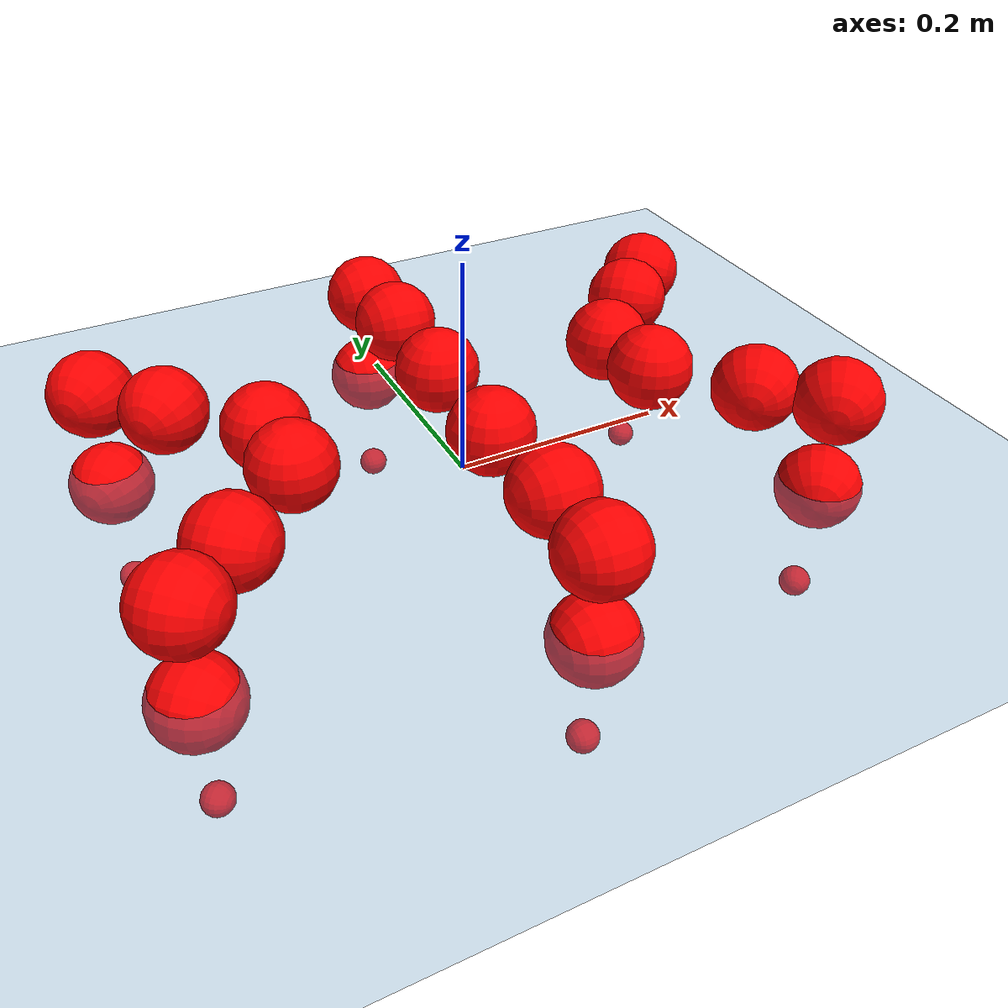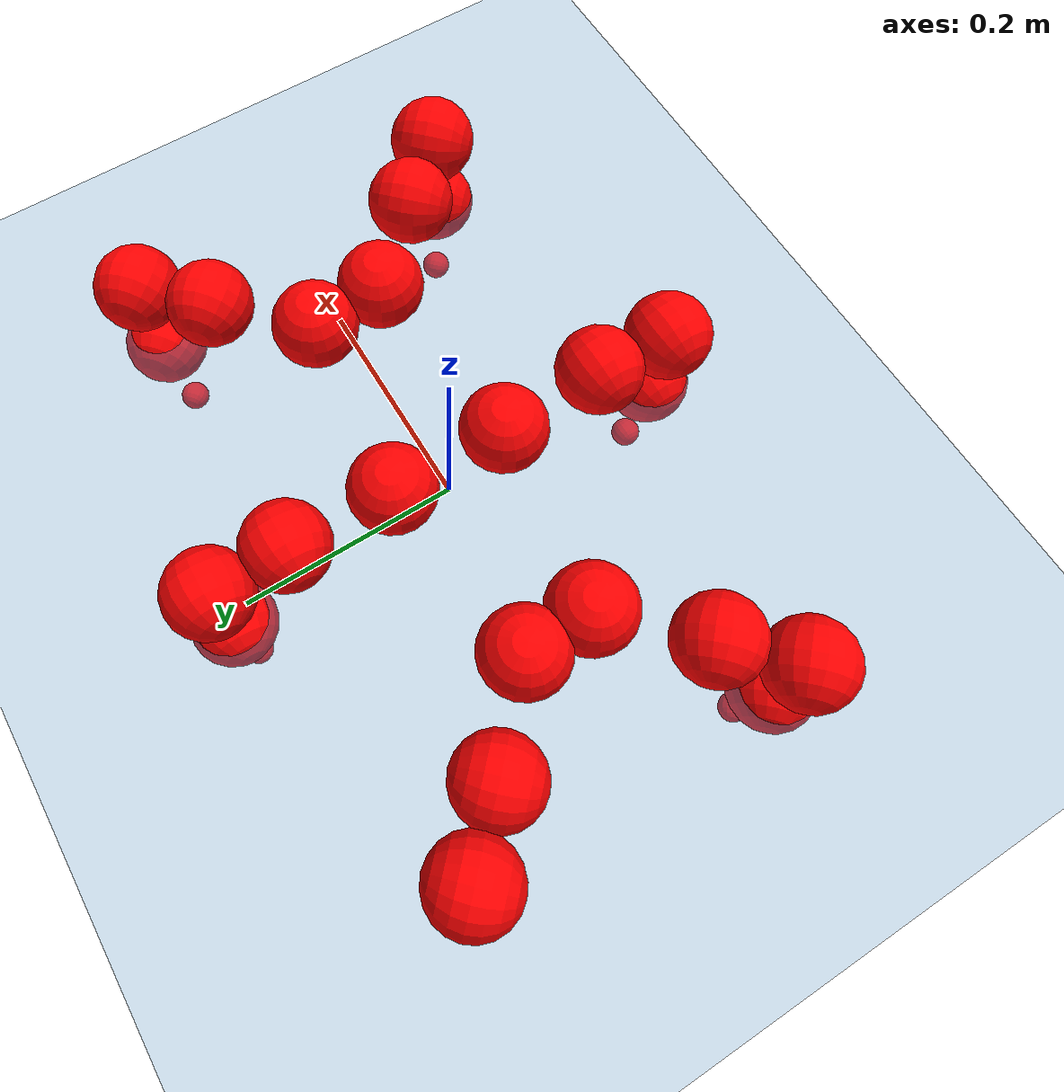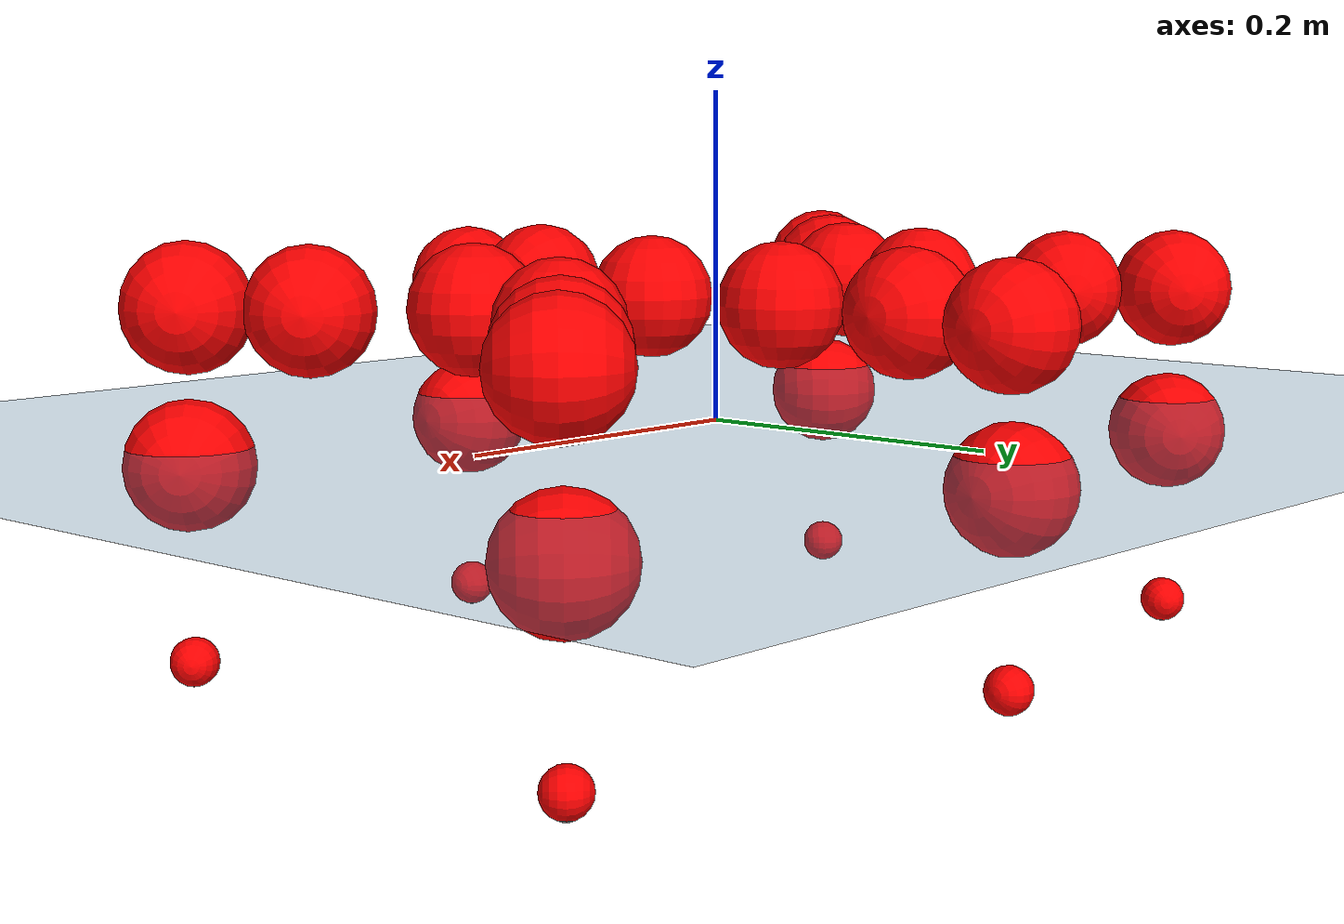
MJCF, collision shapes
<mujoco model="Golem">
  <compiler angle="radian" assetdir="assets" balanceinertia="true" inertiafromgeom="false"/>

  <option timestep="0.005" density="1.2" viscosity="2e-05"/>

  <size nkey="1"/>

  <visual>
    <quality shadowsize="8192"/>
    <map shadowclip="0.5"/>
  </visual>

  <default>
    <default class="/">
      <joint armature="0.01" damping="0.01" frictionloss="0.01"/>
      <geom contype="0" conaffinity="0" group="1" solref="-1000 -80"/>
      <site size="0.01 0.005 0.005" group="5"/>
      <general forcelimited="true" biastype="affine" gainprm="25" biasprm="0 -25 -0.5"/>
      <default class="visual">
        <geom type="mesh" group="2"/>
      </default>
      <default class="collision">
        <geom group="3"/>
      </default>
      <default class="foot">
        <geom size="0.01 0 0" condim="6" group="4" priority="1" solimp="0.015 1 0.01"/>
      </default>
      <default class="reward_collision_sphere">
        <geom group="5" rgba="1 0 0 1"/>
      </default>
    </default>
  </default>

  <asset>
    <texture type="skybox" colorspace="auto" name="//unnamed_texture_0" builtin="gradient" rgb1="0.95 0.95 0.95" rgb2="0.95 0.95 0.95" width="100" height="600"/>
    <texture type="2d" colorspace="auto" name="texplane" builtin="checker" rgb1="0.345 0.575 0.748" rgb2="0.345 0.575 0.748" markrgb="1 1 1" width="512" height="512"/>
    <material name="MatPlane" class="/" texture="texplane" texuniform="true" texrepeat="2 2" specular="0.9"/>
    <mesh name="body" class="/" file="body.stl" scale="0.001 0.001 0.001"/>
    <mesh name="coxa" class="/" file="coxa.stl" scale="0.001 0.001 0.001"/>
    <mesh name="femur" class="/" file="femur.stl" scale="0.001 0.001 0.001"/>
    <mesh name="tibia" class="/" file="tibia.stl" scale="0.001 0.001 0.001"/>
    <mesh name="tarsus" class="/" file="tarsus.stl" scale="0.001 0.001 0.001"/>
  </asset>

  <worldbody>
    <geom name="floor" class="/" size="100 100 0.125" type="plane" group="0" material="MatPlane"/>
    <light name="toplight_shadow" class="/" pos="0 0 5" dir="0.0990148 0.0990148 -0.990148" type="directional" ambient="0.04 0.04 0.04" diffuse="0.55 0.55 0.55" specular="0.12 0.12 0.12"/>
    <light name="toplight_fill" class="/" pos="0 0 5" dir="0.0990148 0.0990148 -0.990148" type="directional" castshadow="false" ambient="0.04 0.04 0.04" diffuse="0.3 0.3 0.3" specular="0.08 0.08 0.08"/>
    <body name="trunk" pos="0.00188261 8.70673e-05 0.000946356" quat="0.999999 0.000535888 -0.000370012 0.00106592">
      <inertial pos="0.000675382 0.00039805 -0.0010658" quat="0.999912 -0.00519141 -0.0118052 -0.00324104" mass="3.21169" diaginertia="0.0134054 0.00111527 0.0204335"/>
      <joint name="//unnamed_joint_0" type="free"/>
      <geom name="//unnamed_geom_1" class="/" pos="0 0 0.0734177" quat="1 0 0 0" type="mesh" rgba="0.9 0.9 0.9 1" mesh="body"/>
      <site name="imu" class="/" pos="0.125186 -0.000739988 0.115118" size="0.0095264"/>
      <camera name="track" class="/" pos="0 -1.29754 0" quat="0.707107 0.707107 0 0" mode="trackcom"/>
      <camera name="ego_camera" class="/" pos="0.13806 0 0.114715" quat="-0.5 -0.5 0.5 0.5"/>
      <body name="coxa_RR" pos="-0.188046 -0.0513258 0.0746622" quat="0.381659 0.000397239 0.00035553 -0.924303">
        <inertial pos="0.00177848 -0.00180195 0.000871516" quat="1 9.95984e-05 -0.000170753 -4.55186e-05" mass="0.180377" diaginertia="0.0135895 0.00117133 0.0205507"/>
        <joint name="coxa_joint_RR" class="/" pos="0 0 0" axis="-0.000109161 0.000162981 -1" range="-3.1893 3.17792" armature="0.00837639" damping="0.0114888" frictionloss="0.00949138"/>
        <geom name="//unnamed_geom_2" class="/" type="mesh" rgba="0.2 0.2 0.2 1" mesh="coxa"/>
        <geom name="//unnamed_geom_3" class="reward_collision_sphere" size="0.0381056" pos="-0.0318599 0 0"/>
        <body name="femur_RR" pos="0.0656481 -0.000161354 0.000684763" quat="0.500049 -0.499971 0.500095 0.499884">
          <inertial pos="-0.000322076 -0.00266249 -0.000865155" quat="0.999999 -0.000296955 -0.000794826 -0.000889615" mass="0.172782" diaginertia="0.0133739 0.00114651 0.020146"/>
          <joint name="femur_joint_RR" class="/" pos="0 0 0" axis="0.000248346 -0.000122 -1" range="-3.0868 3.15557" armature="0.00844943" damping="0.0102589" frictionloss="0.00823944"/>
          <geom name="//unnamed_geom_4" class="/" type="mesh" rgba="0.9 0.9 0.9 1" mesh="femur"/>
          <geom name="//unnamed_geom_5" class="reward_collision_sphere" size="0.0381056"/>
          <body name="tibia_RR" pos="4.84919e-05 -0.0692114 -0.00173316" quat="-1.52544e-05 1 -5.58385e-07 -0.000169777">
            <inertial pos="-0.00260314 -0.000245632 0.000925201" quat="1 -0.000116419 -0.00087799 0.000413749" mass="0.167004" diaginertia="0.0130779 0.00110349 0.0197559"/>
            <joint name="tibia_joint_RR" class="/" pos="0 0 0" axis="-9.92472e-05 -0.000997405 0.999999" range="-3.14347 3.11543" armature="0.00986636" damping="0.0200329" frictionloss="0.0101083"/>
            <geom name="//unnamed_geom_6" class="/" type="mesh" rgba="0.2 0.2 0.2 1" mesh="tibia"/>
            <geom name="//unnamed_geom_7" class="reward_collision_sphere" size="0.0381056"/>
            <body name="tarsus_RR" pos="0.095352 0.000694225 0.00221177" quat="1 -0.0001995 -0.000119337 -0.000135742">
              <inertial pos="0.0669329 0.00172582 0.00269654" quat="0.503397 0.50504 0.491135 0.500312" mass="0.17928" diaginertia="0.0134471 0.00118512 0.0201732"/>
              <joint name="tarsus_joint_RR" class="/" pos="0 0 0" axis="0.00587281 -0.0069198 0.999959" range="-3.13094 3.12657" armature="0.00922096" damping="0.00698699" frictionloss="0.00871637"/>
              <geom name="//unnamed_geom_8" class="/" type="mesh" rgba="0.9 0.9 0.9 1" mesh="tarsus"/>
              <geom name="foot_1" class="foot" size="0.0090134" pos="0.118944 0 0" quat="0 -0.707107 0 0.707107"/>
              <geom name="//unnamed_geom_10" class="reward_collision_sphere" size="0.0381056"/>
              <geom name="//unnamed_geom_11" class="reward_collision_sphere" size="0.0142896" pos="0.114165 0 0"/>
              <site name="foot_1" class="foot" pos="0.118944 0 0" quat="0 -0.707107 0 0.707107" size="0.0095264"/>
            </body>
          </body>
        </body>
      </body>
      <body name="coxa_RM" pos="-0.00180763 -0.0848229 0.0721581" quat="0.707106 1.38819e-05 8.97723e-06 -0.707108">
        <inertial pos="-0.000382773 -0.00186154 0.00251123" quat="0.999912 0.00287537 -0.00729612 -0.0107447" mass="0.172556" diaginertia="0.0131912 0.00113854 0.0202803"/>
        <joint name="coxa_joint_RM" class="/" pos="0 0 0" axis="0.000280801 0.000758606 -1" range="-3.12976 3.10752" armature="0.00838875" damping="0.0135207" frictionloss="0.0103803"/>
        <geom name="//unnamed_geom_12" class="/" type="mesh" rgba="0.2 0.2 0.2 1" mesh="coxa"/>
        <geom name="//unnamed_geom_13" class="reward_collision_sphere" size="0.0381056" pos="-0.0318599 0 0"/>
        <body name="femur_RM" pos="0.064153 0.00246546 0.00385564" quat="0.499399 -0.500218 0.500879 0.499502">
          <inertial pos="-0.00224293 -0.00180785 -0.000789504" quat="0.99998 0.00196759 -0.000634585 0.00604317" mass="0.177573" diaginertia="0.013368 0.00110598 0.0198377"/>
          <joint name="femur_joint_RM" class="/" pos="0 0 0" axis="-0.00595794 0.012549 -0.999904" range="-3.14458 3.14304" armature="0.00872633" damping="0.00998945" frictionloss="0.00973057"/>
          <geom name="//unnamed_geom_14" class="/" type="mesh" rgba="0.9 0.9 0.9 1" mesh="femur"/>
          <geom name="//unnamed_geom_15" class="reward_collision_sphere" size="0.0381056"/>
          <body name="tibia_RM" pos="0.00393843 -0.070682 -0.00119616" quat="-0.000117631 1 0.000217203 -0.000190091">
            <inertial pos="-0.00264207 -0.000328411 0.000612916" quat="0.999998 -0.000407001 0.000723846 -0.00188095" mass="0.173839" diaginertia="0.013936 0.00114337 0.0196746"/>
            <joint name="tibia_joint_RM" class="/" pos="0 0 0" axis="-0.000679009 -0.00971162 0.999953" range="-3.1484 3.13634" armature="0.00930319" damping="0" frictionloss="0.00822565"/>
            <geom name="//unnamed_geom_16" class="/" type="mesh" rgba="0.2 0.2 0.2 1" mesh="tibia"/>
            <geom name="//unnamed_geom_17" class="reward_collision_sphere" size="0.0381056"/>
            <body name="tarsus_RM" pos="0.0899267 8.1559e-05 -0.00152921" quat="0.999999 0.000369744 4.33189e-06 -0.00130753">
              <inertial pos="0.0608779 -0.000109947 -0.0023979" quat="0.497492 0.501833 0.503237 0.497412" mass="0.172701" diaginertia="0.0130971 0.00114914 0.0192385"/>
              <joint name="tarsus_joint_RM" class="/" pos="0 0 0" axis="0.00456283 0.00619357 0.99997" stiffness="0.0104574" range="-3.13396 3.08458" armature="0.0094512" damping="0.0162796" frictionloss="0.00857426"/>
              <geom name="//unnamed_geom_18" class="/" type="mesh" rgba="0.9 0.9 0.9 1" mesh="tarsus"/>
              <geom name="foot_2" class="foot" size="0.00964485" pos="0.118944 0 0" quat="0 -0.707107 0 0.707107"/>
              <geom name="//unnamed_geom_20" class="reward_collision_sphere" size="0.0381056"/>
              <geom name="//unnamed_geom_21" class="reward_collision_sphere" size="0.0142896" pos="0.114165 0 0"/>
              <site name="foot_2" class="foot" pos="0.118944 0 0" quat="0 -0.707107 0 0.707107" size="0.0095264"/>
            </body>
          </body>
        </body>
      </body>
      <body name="coxa_RF" pos="0.190462 -0.0551194 0.0761467" quat="0.92396 -0.000136337 -0.000162413 -0.38249">
        <inertial pos="-0.000731995 0.00041984 -0.00202085" quat="0.999932 0.00941887 0.00447586 -0.00521258" mass="0.168558" diaginertia="0.0134164 0.00113583 0.0197307"/>
        <joint name="coxa_joint_RF" class="/" pos="0 0 0" axis="0.0022655 -0.000101625 -0.999997" range="-3.13173 3.10334" armature="0.00989568" damping="0" frictionloss="0.00823982"/>
        <geom name="//unnamed_geom_22" class="/" type="mesh" rgba="0.2 0.2 0.2 1" mesh="coxa"/>
        <geom name="//unnamed_geom_23" class="reward_collision_sphere" size="0.0381056" pos="-0.0318599 0 0"/>
        <body name="femur_RF" pos="0.060427 -0.0030167 -0.000609947" quat="0.499951 -0.500968 0.500073 0.499006">
          <inertial pos="0.00153087 -0.000826397 -0.00256055" quat="0.999945 0.00193008 -0.00231659 0.0100357" mass="0.166805" diaginertia="0.013098 0.00112936 0.0192139"/>
          <joint name="femur_joint_RF" class="/" pos="0 0 0" axis="0.0130774 -0.00283087 -0.99991" range="-3.09159 3.182" armature="0.0090004" damping="0.0125988" frictionloss="0.00982638"/>
          <geom name="//unnamed_geom_24" class="/" type="mesh" rgba="0.9 0.9 0.9 1" mesh="femur"/>
          <geom name="//unnamed_geom_25" class="reward_collision_sphere" size="0.0381056"/>
          <body name="tibia_RF" pos="-0.00206928 -0.0689355 -0.00280096" quat="0.000353198 1 -0.000503212 0.000764813">
            <inertial pos="-0.000299829 -0.00052662 -0.000750101" quat="0.999912 0.00115748 0.00641153 -0.0115927" mass="0.183796" diaginertia="0.0139775 0.00119075 0.0202382"/>
            <joint name="tibia_joint_RF" class="/" pos="0 0 0" axis="0.00161421 0.00214965 0.999996" stiffness="0.0190256" range="-3.1372 3.13362" armature="0.0096357" damping="0.0297972" frictionloss="0.00948669"/>
            <geom name="//unnamed_geom_26" class="/" type="mesh" rgba="0.2 0.2 0.2 1" mesh="tibia"/>
            <geom name="//unnamed_geom_27" class="reward_collision_sphere" size="0.0381056"/>
            <body name="tarsus_RF" pos="0.0899896 0.000444367 0.00124049" quat="1 -0.000663847 -4.28897e-05 -8.50826e-05">
              <inertial pos="0.0655927 -0.000190012 0.00231121" quat="0.499932 0.50006 0.500062 0.499946" mass="0.168412" diaginertia="0.0139474 0.00114022 0.0197181"/>
              <joint name="tarsus_joint_RF" class="/" pos="0 0 0" axis="-0.00512007 -0.0116097 0.999919" range="-3.12073 3.09417" armature="0.0104753" damping="0" frictionloss="0.00886389"/>
              <geom name="//unnamed_geom_28" class="/" type="mesh" rgba="0.9 0.9 0.9 1" mesh="tarsus"/>
              <geom name="foot_3" class="foot" size="0.00962457" pos="0.118944 0 0" quat="0 -0.707107 0 0.707107"/>
              <geom name="//unnamed_geom_30" class="reward_collision_sphere" size="0.0381056"/>
              <geom name="//unnamed_geom_31" class="reward_collision_sphere" size="0.0142896" pos="0.114165 0 0"/>
              <site name="foot_3" class="foot" pos="0.118944 0 0" quat="0 -0.707107 0 0.707107" size="0.0095264"/>
            </body>
          </body>
        </body>
      </body>
      <body name="coxa_LR" pos="-0.189165 0.0556098 0.0733146" quat="0.38268 -4.48143e-05 2.05182e-05 0.923881">
        <inertial pos="0.000634357 -0.00300308 -0.000745358" quat="0.99998 -0.00558753 -0.00266658 0.00145892" mass="0.170959" diaginertia="0.0138107 0.00118466 0.0199967"/>
        <joint name="coxa_joint_LR" class="/" pos="0 0 0" axis="0.0010703 -0.00114275 -0.999999" stiffness="0.00725864" range="-3.12361 3.10776" armature="0.0108563" damping="0.00946912" frictionloss="0.00990851"/>
        <geom name="//unnamed_geom_32" class="/" type="mesh" rgba="0.2 0.2 0.2 1" mesh="coxa"/>
        <geom name="//unnamed_geom_33" class="reward_collision_sphere" size="0.0381056" pos="-0.0318599 0 0"/>
        <body name="femur_LR" pos="0.0632226 0.00150847 -0.0026059" quat="0.499551 -0.500177 0.499897 0.500375">
          <inertial pos="-0.000137782 -0.00257106 0.00179749" quat="0.999931 0.00668284 0.0080718 0.00530358" mass="0.179189" diaginertia="0.0136381 0.00115642 0.0202458"/>
          <joint name="femur_joint_LR" class="/" pos="0 0 0" axis="-0.00771192 0.00686102 0.999947" stiffness="0.000357036" range="-3.14988 3.14396" armature="0.0103987" damping="0.00887175" frictionloss="0.00891276"/>
          <geom name="//unnamed_geom_34" class="/" type="mesh" rgba="0.9 0.9 0.9 1" mesh="femur"/>
          <geom name="//unnamed_geom_35" class="reward_collision_sphere" size="0.0381056"/>
          <body name="tibia_LR" pos="-0.000489614 -0.0722056 -0.00153674" quat="7.38968e-05 1 -1.16108e-05 -0.000215364">
            <inertial pos="-0.000925814 -0.000181334 0.000455491" quat="0.999932 0.0015761 -0.00983547 0.00598949" mass="0.178313" diaginertia="0.013994 0.00119309 0.0203987"/>
            <joint name="tibia_joint_LR" class="/" pos="0 0 0" axis="0.00203163 0.0134124 -0.999908" range="-3.1319 3.19462" armature="0.00843484" damping="0.0282208" frictionloss="0.0102327"/>
            <geom name="//unnamed_geom_36" class="/" type="mesh" rgba="0.2 0.2 0.2 1" mesh="tibia"/>
            <geom name="//unnamed_geom_37" class="reward_collision_sphere" size="0.0381056"/>
            <body name="tarsus_LR" pos="0.0946142 -0.00114633 -0.00266404" quat="0.999999 -0.000743266 -0.000799167 -0.000581281">
              <inertial pos="0.0619034 -0.00123089 0.00291711" quat="0.500539 0.499065 0.500556 0.499839" mass="0.175002" diaginertia="0.0138785 0.00113026 0.020451"/>
              <joint name="tarsus_joint_LR" class="/" pos="0 0 0" axis="0.000490661 0.00597729 -0.999982" range="-3.1022 3.09606" armature="0.00898924" damping="0.00714774" frictionloss="0.00951707"/>
              <geom name="//unnamed_geom_38" class="/" type="mesh" rgba="0.9 0.9 0.9 1" mesh="tarsus"/>
              <geom name="foot_4" class="foot" size="0.00958204" pos="0.118944 0 0" quat="0.707107 0 -0.707107 0"/>
              <geom name="//unnamed_geom_40" class="reward_collision_sphere" size="0.0381056"/>
              <geom name="//unnamed_geom_41" class="reward_collision_sphere" size="0.0142896" pos="0.114165 0 0"/>
              <site name="foot_4" class="foot" pos="0.118944 0 0" quat="0.707107 0 -0.707107 0" size="0.0095264"/>
            </body>
          </body>
        </body>
      </body>
      <body name="coxa_LM" pos="-0.000865086 0.0843273 0.0726844" quat="0.707649 -0.0010916 0.000117706 0.706564">
        <inertial pos="6.04371e-05 0.000705248 -0.00229159" quat="0.999923 -0.0106384 -0.00633319 -0.000562489" mass="0.17208" diaginertia="0.0126757 0.00111474 0.0192015"/>
        <joint name="coxa_joint_LM" class="/" pos="0 0 0" axis="0.0010088 1.50273e-06 -0.999999" range="-3.13912 3.08503" armature="0.0103309" damping="0.0177407" frictionloss="0.0096521"/>
        <geom name="//unnamed_geom_42" class="/" type="mesh" rgba="0.2 0.2 0.2 1" mesh="coxa"/>
        <geom name="//unnamed_geom_43" class="reward_collision_sphere" size="0.0381056" pos="-0.0318599 0 0"/>
        <body name="femur_LM" pos="0.0640757 -0.00113872 0.00107208" quat="0.499806 -0.500001 0.500027 0.500166">
          <inertial pos="0.00179829 0.00187015 -0.00176446" quat="1 -0.000139204 0.000534488 -0.000250424" mass="0.180895" diaginertia="0.0132202 0.00119558 0.0207354"/>
          <joint name="femur_joint_LM" class="/" pos="0 0 0" axis="0.000397224 0.00355734 0.999994" stiffness="0.00135483" range="-3.13785 3.13207" armature="0.008735" damping="0" frictionloss="0.00984253"/>
          <geom name="//unnamed_geom_44" class="/" type="mesh" rgba="0.9 0.9 0.9 1" mesh="femur"/>
          <geom name="//unnamed_geom_45" class="reward_collision_sphere" size="0.0381056"/>
          <body name="tibia_LM" pos="0.0030133 -0.068982 0.00212227" quat="-0.000140048 0.999999 -0.000938628 0.000934982">
            <inertial pos="0.00244399 -0.000459707 0.00111787" quat="0.999995 -7.54992e-05 0.00235639 -0.00224209" mass="0.173741" diaginertia="0.0136886 0.00111891 0.0195471"/>
            <joint name="tibia_joint_LM" class="/" pos="0 0 0" axis="0.0108392 -0.0088225 -0.999902" stiffness="0.00453021" range="-3.12008 3.13185" armature="0.0106297" damping="0" frictionloss="0.0107694"/>
            <geom name="//unnamed_geom_46" class="/" type="mesh" rgba="0.2 0.2 0.2 1" mesh="tibia"/>
            <geom name="//unnamed_geom_47" class="reward_collision_sphere" size="0.0381056"/>
            <body name="tarsus_LM" pos="0.0914217 -0.000355676 -0.00276456" quat="1 1.61656e-06 4.40829e-05 -6.62704e-05">
              <inertial pos="0.0625188 -0.00241199 -0.00265572" quat="0.500528 0.500007 0.500079 0.499386" mass="0.17386" diaginertia="0.0133162 0.00113517 0.0201539"/>
              <joint name="tarsus_joint_LM" class="/" pos="0 0 0" axis="0.00340207 -0.00808205 -0.999962" stiffness="0.00489618" range="-3.13843 3.15138" armature="0.00909244" damping="0.0176454" frictionloss="0.00830378"/>
              <geom name="//unnamed_geom_48" class="/" type="mesh" rgba="0.9 0.9 0.9 1" mesh="tarsus"/>
              <geom name="foot_5" class="foot" size="0.00952211" pos="0.118944 0 0" quat="0.707107 0 -0.707107 0"/>
              <geom name="//unnamed_geom_50" class="reward_collision_sphere" size="0.0381056"/>
              <geom name="//unnamed_geom_51" class="reward_collision_sphere" size="0.0142896" pos="0.114165 0 0"/>
              <site name="foot_5" class="foot" pos="0.118944 0 0" quat="0.707107 0 -0.707107 0" size="0.0095264"/>
            </body>
          </body>
        </body>
      </body>
      <body name="coxa_LF" pos="0.187897 0.055998 0.0708686" quat="0.924187 0.000124302 0.000829903 0.38194">
        <inertial pos="0.00087945 0.000402727 0.00279297" quat="0.999987 0.00226041 0.0019576 -0.00422943" mass="0.172265" diaginertia="0.0131005 0.00118723 0.0198671"/>
        <joint name="coxa_joint_LF" class="/" pos="0 0 0" axis="-0.00586612 -0.00147719 -0.999982" range="-3.11169 3.14563" armature="0.0085373" damping="0.000791512" frictionloss="0.00941018"/>
        <geom name="//unnamed_geom_52" class="/" type="mesh" rgba="0.2 0.2 0.2 1" mesh="coxa"/>
        <geom name="//unnamed_geom_53" class="reward_collision_sphere" size="0.0381056" pos="-0.0318599 0 0"/>
        <body name="femur_LF" pos="0.064311 0.00101219 -0.00268475" quat="0.500098 -0.500004 0.499144 0.500752">
          <inertial pos="-0.000274251 0.0011745 0.00117144" quat="0.99991 -0.00653654 0.000485882 0.0117343" mass="0.167549" diaginertia="0.0134967 0.00115486 0.0198272"/>
          <joint name="femur_joint_LF" class="/" pos="0 0 0" axis="-0.00391559 -0.000367308 0.999992" range="-3.12904 3.13896" armature="0.00952744" damping="0.00553723" frictionloss="0.009581"/>
          <geom name="//unnamed_geom_54" class="/" type="mesh" rgba="0.9 0.9 0.9 1" mesh="femur"/>
          <geom name="//unnamed_geom_55" class="reward_collision_sphere" size="0.0381056"/>
          <body name="tibia_LF" pos="0.00213031 -0.0672566 -0.000828829" quat="0.000427471 1 0.000212047 0.000300489">
            <inertial pos="-0.000378265 0.000336705 -0.00121855" quat="0.999911 0.00753035 -0.00556853 -0.00951986" mass="0.169425" diaginertia="0.013228 0.00116196 0.0191616"/>
            <joint name="tibia_joint_LF" class="/" pos="0 0 0" axis="0.00372967 0.00873793 -0.999955" stiffness="0.0183609" range="-3.13448 3.19052" armature="0.00905925" damping="0.0174464" frictionloss="0.00868468"/>
            <geom name="//unnamed_geom_56" class="/" type="mesh" rgba="0.2 0.2 0.2 1" mesh="tibia"/>
            <geom name="//unnamed_geom_57" class="reward_collision_sphere" size="0.0381056"/>
            <body name="tarsus_LF" pos="0.0948642 -2.41794e-05 -0.00137511" quat="1 -0.000529338 -0.000119403 0.000131114">
              <inertial pos="0.0618775 -0.00306371 -0.00165363" quat="0.500442 0.508934 0.492031 0.498448" mass="0.176594" diaginertia="0.013929 0.00117526 0.0202636"/>
              <joint name="tarsus_joint_LF" class="/" pos="0 0 0" axis="-0.0115048 -0.00910912 -0.999892" range="-3.19016 3.18606" armature="0.00834695" damping="0.00154263" frictionloss="0.0091917"/>
              <geom name="//unnamed_geom_58" class="/" type="mesh" rgba="0.9 0.9 0.9 1" mesh="tarsus"/>
              <geom name="foot_6" class="foot" size="0.0100352" pos="0.118944 0 0" quat="0.707107 0 -0.707107 0"/>
              <geom name="//unnamed_geom_60" class="reward_collision_sphere" size="0.0381056"/>
              <geom name="//unnamed_geom_61" class="reward_collision_sphere" size="0.0142896" pos="0.114165 0 0"/>
              <site name="foot_6" class="foot" pos="0.118944 0 0" quat="0.707107 0 -0.707107 0" size="0.0095264"/>
            </body>
          </body>
        </body>
      </body>
    </body>
  </worldbody>

  <contact>
    <pair class="/" geom1="floor" geom2="foot_1" name="//unnamed_contact_0"/>
    <pair class="/" geom1="floor" geom2="foot_2" name="//unnamed_contact_1"/>
    <pair class="/" geom1="floor" geom2="foot_3" name="//unnamed_contact_2"/>
    <pair class="/" geom1="floor" geom2="foot_4" name="//unnamed_contact_3"/>
    <pair class="/" geom1="floor" geom2="foot_5" name="//unnamed_contact_4"/>
    <pair class="/" geom1="floor" geom2="foot_6" name="//unnamed_contact_5"/>
  </contact>

  <actuator>
    <general name="coxa_joint_RR" class="/" joint="coxa_joint_RR" forcerange="-6.93181 6.93181" gainprm="22.9328" biasprm="0 -22.9328 -0.469892"/>
    <general name="femur_joint_RR" class="/" joint="femur_joint_RR" forcerange="-7.42223 7.42223" gainprm="22.9328" biasprm="0 -22.9328 -0.469892"/>
    <general name="tibia_joint_RR" class="/" joint="tibia_joint_RR" forcerange="-6.98439 6.98439" gainprm="22.9328" biasprm="0 -22.9328 -0.469892"/>
    <general name="tarsus_joint_RR" class="/" joint="tarsus_joint_RR" forcerange="-7.66365 7.66365" gainprm="22.9328" biasprm="0 -22.9328 -0.469892"/>
    <general name="coxa_joint_RM" class="/" joint="coxa_joint_RM" forcerange="-6.23202 6.23202" gainprm="22.9328" biasprm="0 -22.9328 -0.469892"/>
    <general name="femur_joint_RM" class="/" joint="femur_joint_RM" forcerange="-7.00638 7.00638" gainprm="22.9328" biasprm="0 -22.9328 -0.469892"/>
    <general name="tibia_joint_RM" class="/" joint="tibia_joint_RM" forcerange="-7.65352 7.65352" gainprm="22.9328" biasprm="0 -22.9328 -0.469892"/>
    <general name="tarsus_joint_RM" class="/" joint="tarsus_joint_RM" forcerange="-6.99648 6.99648" gainprm="22.9328" biasprm="0 -22.9328 -0.469892"/>
    <general name="coxa_joint_RF" class="/" joint="coxa_joint_RF" forcerange="-7.05404 7.05404" gainprm="22.9328" biasprm="0 -22.9328 -0.469892"/>
    <general name="femur_joint_RF" class="/" joint="femur_joint_RF" forcerange="-6.92458 6.92458" gainprm="22.9328" biasprm="0 -22.9328 -0.469892"/>
    <general name="tibia_joint_RF" class="/" joint="tibia_joint_RF" forcerange="-7.18634 7.18634" gainprm="22.9328" biasprm="0 -22.9328 -0.469892"/>
    <general name="tarsus_joint_RF" class="/" joint="tarsus_joint_RF" forcerange="-7.01517 7.01517" gainprm="22.9328" biasprm="0 -22.9328 -0.469892"/>
    <general name="coxa_joint_LR" class="/" joint="coxa_joint_LR" forcerange="-6.71478 6.71478" gainprm="22.9328" biasprm="0 -22.9328 -0.469892"/>
    <general name="femur_joint_LR" class="/" joint="femur_joint_LR" forcerange="-6.97452 6.97452" gainprm="22.9328" biasprm="0 -22.9328 -0.469892"/>
    <general name="tibia_joint_LR" class="/" joint="tibia_joint_LR" forcerange="-7.22838 7.22838" gainprm="22.9328" biasprm="0 -22.9328 -0.469892"/>
    <general name="tarsus_joint_LR" class="/" joint="tarsus_joint_LR" forcerange="-6.57973 6.57973" gainprm="22.9328" biasprm="0 -22.9328 -0.469892"/>
    <general name="coxa_joint_LM" class="/" joint="coxa_joint_LM" forcerange="-6.93686 6.93686" gainprm="22.9328" biasprm="0 -22.9328 -0.469892"/>
    <general name="femur_joint_LM" class="/" joint="femur_joint_LM" forcerange="-7.65711 7.65711" gainprm="22.9328" biasprm="0 -22.9328 -0.469892"/>
    <general name="tibia_joint_LM" class="/" joint="tibia_joint_LM" forcerange="-6.79601 6.79601" gainprm="22.9328" biasprm="0 -22.9328 -0.469892"/>
    <general name="tarsus_joint_LM" class="/" joint="tarsus_joint_LM" forcerange="-6.31112 6.31112" gainprm="22.9328" biasprm="0 -22.9328 -0.469892"/>
    <general name="coxa_joint_LF" class="/" joint="coxa_joint_LF" forcerange="-6.64375 6.64375" gainprm="22.9328" biasprm="0 -22.9328 -0.469892"/>
    <general name="femur_joint_LF" class="/" joint="femur_joint_LF" forcerange="-6.59926 6.59926" gainprm="22.9328" biasprm="0 -22.9328 -0.469892"/>
    <general name="tibia_joint_LF" class="/" joint="tibia_joint_LF" forcerange="-6.24592 6.24592" gainprm="22.9328" biasprm="0 -22.9328 -0.469892"/>
    <general name="tarsus_joint_LF" class="/" joint="tarsus_joint_LF" forcerange="-6.29618 6.29618" gainprm="22.9328" biasprm="0 -22.9328 -0.469892"/>
  </actuator>

  <sensor>
    <gyro site="imu" name="imu_angular_velocity"/>
    <velocimeter site="imu" name="imu_linear_velocity"/>
    <framelinvel objtype="site" objname="foot_1" name="foot_1_global_linear_velocity"/>
    <framelinvel objtype="site" objname="foot_2" name="foot_2_global_linear_velocity"/>
    <framelinvel objtype="site" objname="foot_3" name="foot_3_global_linear_velocity"/>
    <framelinvel objtype="site" objname="foot_4" name="foot_4_global_linear_velocity"/>
    <framelinvel objtype="site" objname="foot_5" name="foot_5_global_linear_velocity"/>
    <framelinvel objtype="site" objname="foot_6" name="foot_6_global_linear_velocity"/>
  </sensor>

  <keyframe>
    <key name="home" qpos="0 0 0.1457 1 0 0 0 0 0 0 0 0 0 0 0 0 0 0 0 0 0 0 0 0 0 0 0 0 0 0 0"/>
  </keyframe>
</mujoco>
